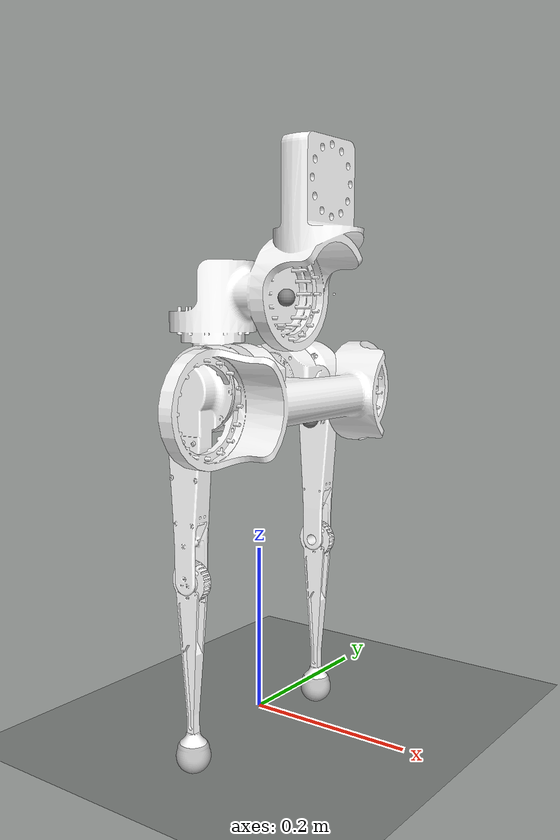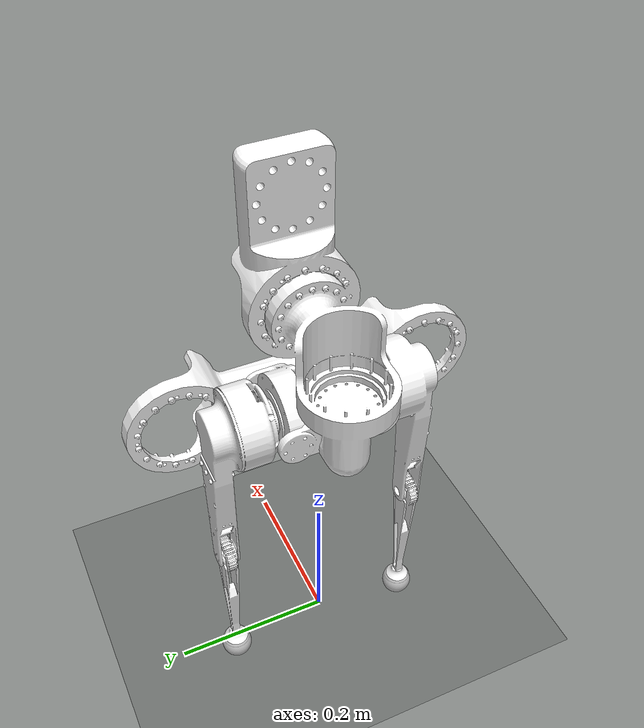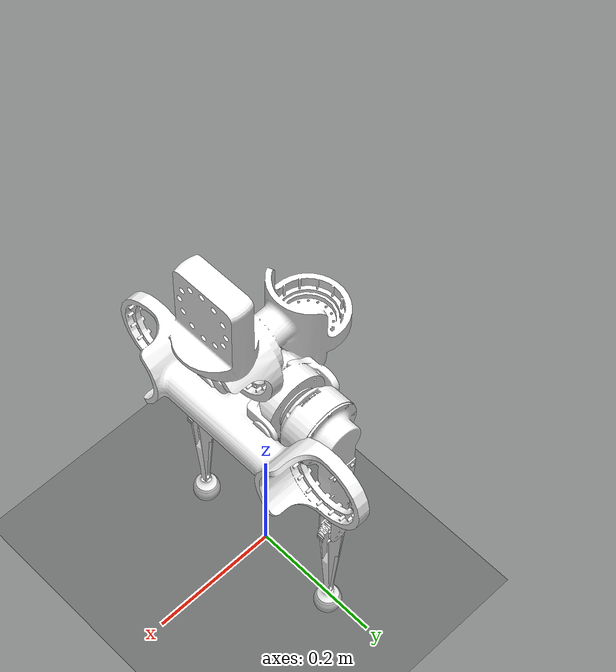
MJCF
<mujoco model="RobBIE_DM_Sim_PointFoot">
  <compiler angle="radian" autolimits="true"/>
  <default>
    <geom contype="0" conaffinity="0" condim="1" solref="0.005 1"/>
  </default>
  <option timestep='0.001' iterations="50" solver='PGS' gravity='0 0 -9.81' noslip_iterations="20">
    <flag sensornoise="disable"/>
  </option>

  <visual>
    <quality shadowsize='4096'/>
    <global realtime="1" />
  </visual>

  <asset>
    <texture type="skybox" builtin="gradient" rgb1="0.4 0.6 0.8" width="128" height="128"/>
    <texture name="plane" type="2d" builtin="checker" rgb1="0.2 0.2 0.2" rgb2="0.3 0.3 0.3" width="500" height="500" />
    <material name="plane" reflectance="0.0" texture="plane" texrepeat="1 1" texuniform="true"/>

    <mesh name="base_link" file="base_link.STL"/>
    <mesh name="Link_Left_Abd" file="Link_Left_Abd.STL"/>
    <mesh name="Link_Left_Hip" file="Link_Left_Hip.STL"/>
    <mesh name="Link_Left_Knee" file="Link_Left_Knee.STL"/>
    <mesh name="Link_Right_Abd" file="Link_Right_Abd.STL"/>
    <mesh name="Link_Right_Hip" file="Link_Right_Hip.STL"/>
    <mesh name="Link_Right_Knee" file="Link_Right_Knee.STL"/>
  </asset>
  <worldbody>
    <light directional="false" cutoff="60" exponent="1" diffuse=".5 .5 .5" specular=".1 .1 .1" pos="0.5 0.1 0.8" dir="-0.5 -0.1 -0.8"/>
    <geom name="floor" pos="0  0  0" size="20 20 20" type="plane" material="plane" condim="3" conaffinity="15" friction=".7 .001 .001" contype="6"/>
    <body name="robbie" pos="0 0 0.4">
      <inertial pos="0. 0. 0." mass="4" fullinertia="0.02672725 0.03051168 0.0238939 -0.0001727 -0.00749081 -0.00002698"/>
      <joint type="slide" axis="1 0 0" limited="false" range="-0.01 0.01"/>
      <joint type="slide" axis="0 1 0" limited="false" range="-0.01 0.01"/>
      <joint type="slide" axis="0 0 1" limited="false" range="-0.01 0.01"/>
      <joint name="thetaX" type="hinge" axis="1 0 0" limited="false" range="-0.01 0.01"/>
      <joint name="thetaY" type="hinge" axis="0 1 0" limited="false" range="-0.01 0.01"/>
      <joint name="thetaZ" type="hinge" axis="0 0 1" limited="true" range="-0.01 0.01"/>
      <geom type="mesh" rgba="1 1 1 1" mesh="base_link"  contype="2" conaffinity="2" />
      <site name="imu_base" size="0.01" pos="0.0383611 0 0.1"/>
      <site name="imu_vel" size="0.01" pos="0.0383611 0.05 -0.0448642"/>
      <body name="Link_Left_Abd" pos="0 0.05 0" gravcomp="0">
        <inertial pos="-0.00040156 -0.010229 -0.00048271" mass="0.62632" fullinertia="0.0001729 0.00039831 0.0002888 -1.26e-06 -8e-08 -2.55e-06"/>
        <joint name="Joint_Left_Abd" pos="0 0 0" axis="1 0 0"/>
        <geom type="mesh" rgba="1 1 1 1" mesh="Link_Left_Abd"  contype="1" conaffinity="1"/>
        <body name="Link_Left_Hip" pos="0 0 0" gravcomp="0">
          <inertial pos="-3.2685e-05 0.047398 -0.015008" mass="0.89496158" fullinertia="0.00218531 0.00213769 0.00049064 -4.9e-07 5.9e-07 0.0003668"/>
          <joint name="Joint_Left_Hip" pos="0 0 0" axis="0 1 0"/>
          <geom type="mesh" rgba="1 1 1 1" mesh="Link_Left_Hip" contype="1" conaffinity="1"/>
          <body name="Link_Left_Knee" pos="0 0.0755 -0.2115" gravcomp="0">
            <inertial pos="5.44392e-05 -5.44606e-05 -0.129563" mass="0.13249374" fullinertia="0.00104499 0.00105069 1.641e-05 0 4.5e-07 -4.5e-07"/>
            <joint name="Joint_Left_Knee" pos="0 0 0" axis="0 1 0"/>
            <geom type="mesh" rgba="1 1 1 1" mesh="Link_Left_Knee" contype="6" conaffinity="1"/>
            <site name="imu_left_foot" size="0.025" pos="0 0. -0.21" rgba="0.5 0 0 0.5"/>
          </body>
        </body>
      </body>
      <body name="Link_Right_Abd" pos="0 -0.05 0" gravcomp="0">
        <inertial pos="-0.000310402 0.0102291 -0.000482701" mass="0.62632" fullinertia="0.0001729 0.00039831 0.0002888 7.7e-07 8e-08 2.55e-06"/>
        <joint name="Joint_Right_Abd" pos="0 0 0" axis="1 0 0"/>
        <geom type="mesh" rgba="1 1 1 1" mesh="Link_Right_Abd" contype="1" conaffinity="1"/>
        <body name="Link_Right_Hip" pos="0 0 0" gravcomp="0">
          <inertial pos="3.26851e-05 -0.0473977 -0.0150076" mass="0.89496158" fullinertia="0.00218531 0.00213769 0.00049064 -4.9e-07 -5.9e-07 -0.0003668"/>
          <joint name="Joint_Right_Hip" pos="0 0 0" axis="0 1 0"/>
          <geom type="mesh" rgba="1 1 1 1" mesh="Link_Right_Hip" contype="1" conaffinity="1"/>
          <body name="Link_Right_Knee" pos="0 -0.0755 -0.2115" gravcomp="0">
            <inertial pos="-5.44392e-05 5.44606e-05 -0.129563" mass="0.132494" fullinertia="0.00104499 0.00105069 1.641e-05 0 -4.5e-07 4.5e-07"/>
            <joint name="Joint_Right_Knee" pos="0 0 0" axis="0 1 0"/>
            <geom type="mesh" rgba="1 1 1 1" mesh="Link_Right_Knee" contype="6" conaffinity="1"/>
            <site name="imu_right_foot" size="0.025" pos="0 0. -0.21" rgba="0.5 0 0 0.5"/>
          </body>
        </body>
      </body>
    </body>
  </worldbody>

  <actuator>
    <motor name="left_ABAD_motor"  joint="Joint_Left_Abd" ctrllimited="false" ctrlrange="-30 30"/>
    <motor name="left_hip_motor"  joint="Joint_Left_Hip" ctrllimited="false" ctrlrange="-30 30"/>
    <motor name="left_knee_motor"  joint="Joint_Left_Knee" ctrllimited="false" ctrlrange="-30 30"/>
    <motor name="right_ABAD_motor"  joint="Joint_Right_Abd" ctrllimited="false" ctrlrange="-30 30"/>
    <motor name="right_hip_motor"  joint="Joint_Right_Hip" ctrllimited="false" ctrlrange="-30 30"/>
    <motor name="right_knee_motor"  joint="Joint_Right_Knee" ctrllimited="false" ctrlrange="-30 30"/>
  </actuator>

  <sensor>
    <framequat       name="base_imu_quat"     objtype="site"  objname="imu_base"/>
    <gyro    site="imu_base"/>

    <actuatorpos name="left_ABAD_pos"    actuator="left_ABAD_motor" noise="0.01"/>
    <actuatorpos name="left_hip_pos"   actuator="left_hip_motor" noise="0.01"/>
    <actuatorpos name="left_knee_pos"    actuator="left_knee_motor" noise="0.01"/>
    <actuatorpos name="right_ABAD_pos"    actuator="right_ABAD_motor" noise="0.01"/>
    <actuatorpos name="right_hip_pos"   actuator="right_hip_motor" noise="0.01"/>
    <actuatorpos name="right_knee_pos"    actuator="right_knee_motor" noise="0.01"/>

    <actuatorvel name="left_ABAD_vel"    actuator="left_ABAD_motor" noise="0.1"/>
    <actuatorvel name="left_hip_vel"   actuator="left_hip_motor" noise="0.1"/>
    <actuatorvel name="left_knee_vel"    actuator="left_knee_motor" noise="0.1"/>
    <actuatorvel name="right_ABAD_vel"    actuator="right_ABAD_motor" noise="0.1"/>
    <actuatorvel name="right_hip_vel"   actuator="right_hip_motor" noise="0.1"/>
    <actuatorvel name="right_knee_vel"    actuator="right_knee_motor" noise="0.1"/>

    <actuatorfrc name="left_ABAD_frc"    actuator="left_ABAD_motor" noise="0.1"/>
    <actuatorfrc name="left_hip_frc"   actuator="left_hip_motor" noise="0.1"/>
    <actuatorfrc name="left_knee_frc"    actuator="left_knee_motor" noise="0.1"/>
    <actuatorfrc name="right_ABAD_frc"    actuator="right_ABAD_motor" noise="0.1"/>
    <actuatorfrc name="right_hip_frc"   actuator="right_hip_motor" noise="0.1"/>
    <actuatorfrc name="right_knee_frc"    actuator="right_knee_motor" noise="0.1"/>

    <accelerometer site="imu_base"/>

    <framepos objtype="site" objname="imu_base"/>
    <framelinvel objtype="site" objname="imu_vel"/>

  </sensor>
</mujoco>
